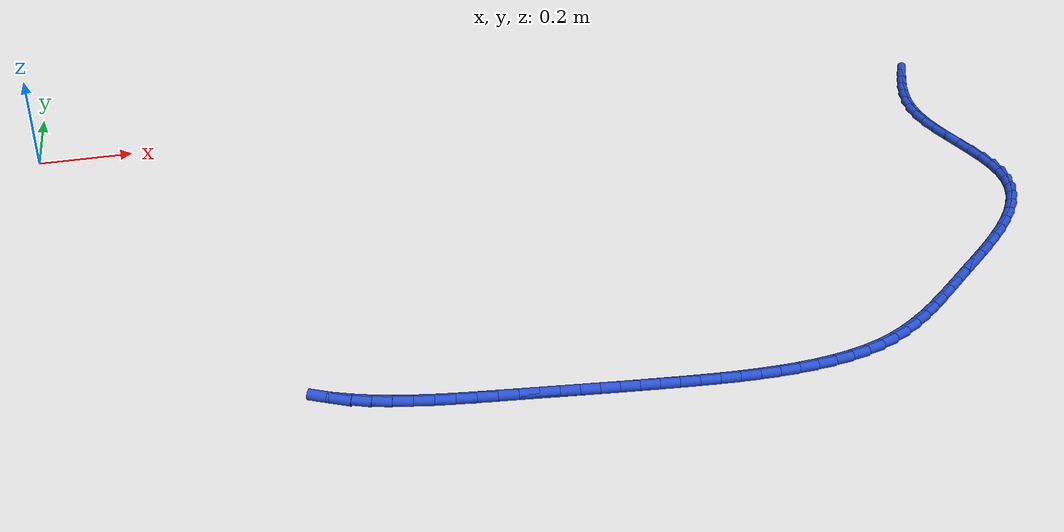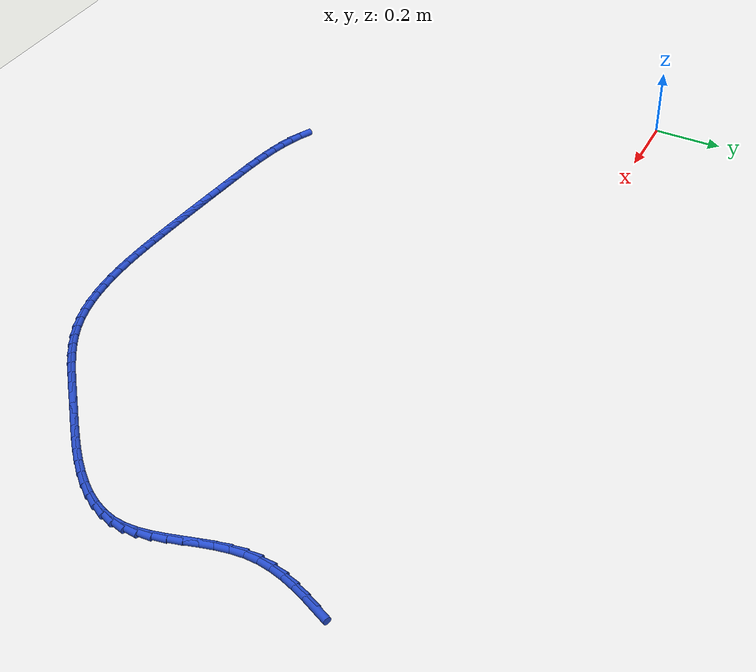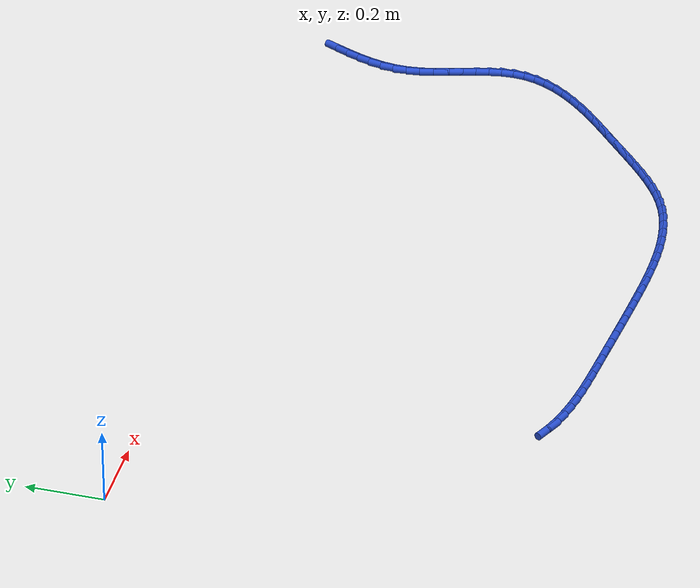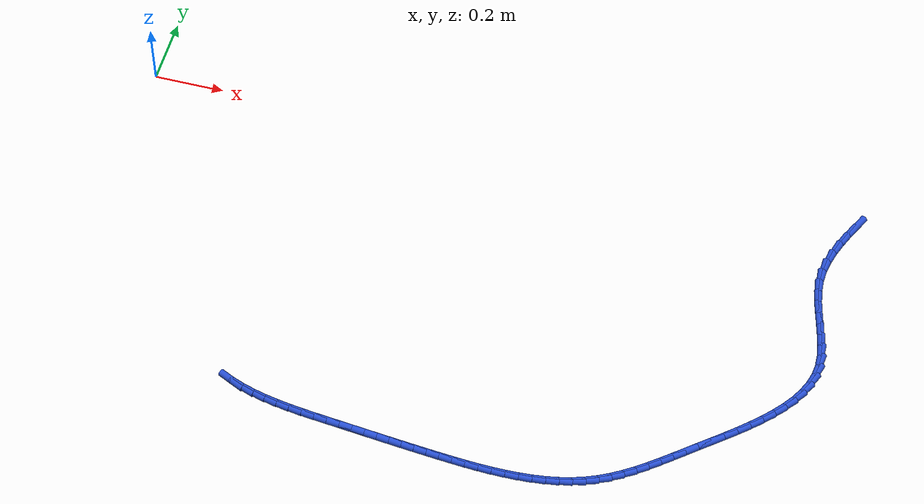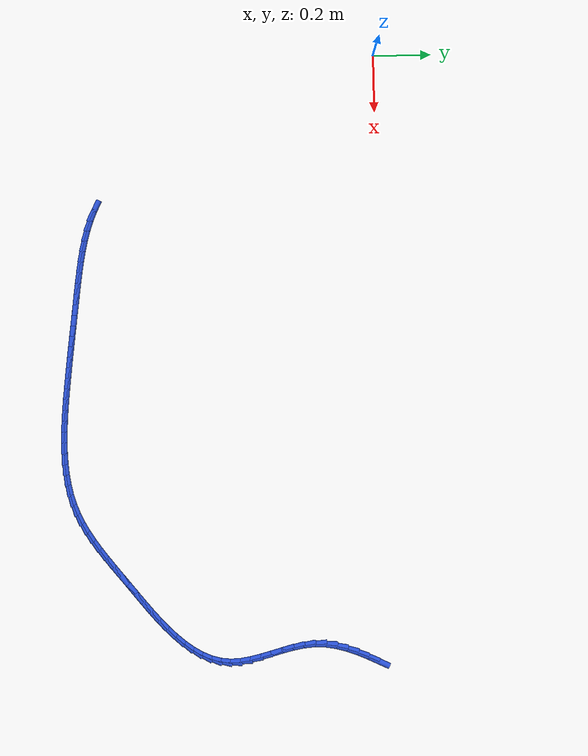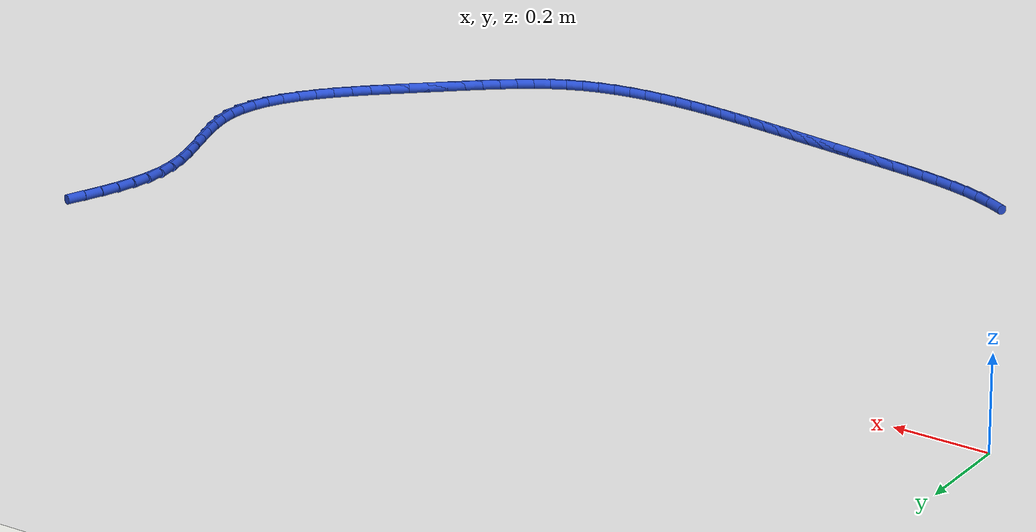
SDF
<sdf version="1.6">
 <world name="default">
  <model name="ground_plane">
   <static>1</static>
   <link name="link">
    <collision name="collision">
     <geometry><plane><normal>0 0 1</normal><size>100 100</size></plane></geometry>
     <surface><friction><ode><mu>100</mu><mu2>50</mu2></ode></friction></surface>
    </collision>
    <visual name="visual">
     <cast_shadows>0</cast_shadows>
     <geometry><plane><normal>0 0 1</normal><size>100 100</size></plane></geometry>
     <material>
      <script><uri>file://media/materials/scripts/gazebo.material</uri><name>Gazebo/WhiteGlow</name></script>
     </material>
    </visual>
   </link>
  </model>
  <model name="line">
   <link name="link_95">
    <pose>2.056342554561105 -0.029011844344870658 0.01 0 1.57 1.1388476114634625</pose>
    <collision name="collision">
     <geometry><cylinder><radius>0.01</radius><length>0.08</length></cylinder></geometry>
    </collision>
    <visual name="visual">
     <material>
      <script><name>Gazebo/Blue</name><uri>file://media/materials/scripts/gazebo.material</uri></script>
     </material>
     <geometry><cylinder><radius>0.01</radius><length>0.08</length></cylinder></geometry>
    </visual>
   </link>
   <link name="link_96">
    <pose>2.0406064838882694 -0.06314784064695883 0.01 0 1.57 1.1770601165541277</pose>
    <collision name="collision">
     <geometry><cylinder><radius>0.01</radius><length>0.08</length></cylinder></geometry>
    </collision>
    <visual name="visual">
     <material>
      <script><name>Gazebo/Blue</name><uri>file://media/materials/scripts/gazebo.material</uri></script>
     </material>
     <geometry><cylinder><radius>0.01</radius><length>0.08</length></cylinder></geometry>
    </visual>
   </link>
   <link name="link_97">
    <pose>2.0263187011598904 -0.09754066671219805 0.01 0 1.57 1.234585510567665</pose>
    <collision name="collision">
     <geometry><cylinder><radius>0.01</radius><length>0.08</length></cylinder></geometry>
    </collision>
    <visual name="visual">
     <material>
      <script><name>Gazebo/Blue</name><uri>file://media/materials/scripts/gazebo.material</uri></script>
     </material>
     <geometry><cylinder><radius>0.01</radius><length>0.08</length></cylinder></geometry>
    </visual>
   </link>
   <link name="link_98">
    <pose>2.014205551460342 -0.13220123672289816 0.01 0 1.57 1.3130005502657833</pose>
    <collision name="collision">
     <geometry><cylinder><radius>0.01</radius><length>0.08</length></cylinder></geometry>
    </collision>
    <visual name="visual">
     <material>
      <script><name>Gazebo/Blue</name><uri>file://media/materials/scripts/gazebo.material</uri></script>
     </material>
     <geometry><cylinder><radius>0.01</radius><length>0.08</length></cylinder></geometry>
    </visual>
   </link>
   <link name="link_99">
    <pose>2.004993379873996 -0.1671404648613711 0.01 0 1.57 1.4135739616942622</pose>
    <collision name="collision">
     <geometry><cylinder><radius>0.01</radius><length>0.08</length></cylinder></geometry>
    </collision>
    <visual name="visual">
     <material>
      <script><name>Gazebo/Blue</name><uri>file://media/materials/scripts/gazebo.material</uri></script>
     </material>
     <geometry><cylinder><radius>0.01</radius><length>0.08</length></cylinder></geometry>
    </visual>
   </link>
   <link name="link_100">
    <pose>1.9994085314852261 -0.2023692653099266 0.01 0 1.57 1.536098833072326</pose>
    <collision name="collision">
     <geometry><cylinder><radius>0.01</radius><length>0.08</length></cylinder></geometry>
    </collision>
    <visual name="visual">
     <material>
      <script><name>Gazebo/Blue</name><uri>file://media/materials/scripts/gazebo.material</uri></script>
     </material>
     <geometry><cylinder><radius>0.01</radius><length>0.08</length></cylinder></geometry>
    </visual>
   </link>
   <link name="link_101">
    <pose>1.9981752655209268 -0.23789837349829085 0.01 0 1.57 -1.4787136516543946</pose>
    <collision name="collision">
     <geometry><cylinder><radius>0.01</radius><length>0.08</length></cylinder></geometry>
    </collision>
    <visual name="visual">
     <material>
      <script><name>Gazebo/Blue</name><uri>file://media/materials/scripts/gazebo.material</uri></script>
     </material>
     <geometry><cylinder><radius>0.01</radius><length>0.08</length></cylinder></geometry>
    </visual>
   </link>
   <link name="link_102">
    <pose>2.00148063086693 -0.2736924873211175 0.01 0 1.57 -1.3841668818279076</pose>
    <collision name="collision">
     <geometry><cylinder><radius>0.01</radius><length>0.08</length></cylinder></geometry>
    </collision>
    <visual name="visual">
     <material>
      <script><name>Gazebo/Blue</name><uri>file://media/materials/scripts/gazebo.material</uri></script>
     </material>
     <geometry><cylinder><radius>0.01</radius><length>0.08</length></cylinder></geometry>
    </visual>
   </link>
   <link name="link_103">
    <pose>2.0082626842800253 -0.30960926928198373 0.01 0 1.57 -1.3245270748039015</pose>
    <collision name="collision">
     <geometry><cylinder><radius>0.01</radius><length>0.08</length></cylinder></geometry>
    </collision>
    <visual name="visual">
     <material>
      <script><name>Gazebo/Blue</name><uri>file://media/materials/scripts/gazebo.material</uri></script>
     </material>
     <geometry><cylinder><radius>0.01</radius><length>0.08</length></cylinder></geometry>
    </visual>
   </link>
   <link name="link_104">
    <pose>2.017282387317068 -0.3454912052844373 0.01 0 1.57 -1.2971321322681388</pose>
    <collision name="collision">
     <geometry><cylinder><radius>0.01</radius><length>0.08</length></cylinder></geometry>
    </collision>
    <visual name="visual">
     <material>
      <script><name>Gazebo/Blue</name><uri>file://media/materials/scripts/gazebo.material</uri></script>
     </material>
     <geometry><cylinder><radius>0.01</radius><length>0.08</length></cylinder></geometry>
    </visual>
   </link>
   <link name="link_105">
    <pose>2.027300701534919 -0.3811807812320253 0.01 0 1.57 -1.300866322305182</pose>
    <collision name="collision">
     <geometry><cylinder><radius>0.01</radius><length>0.08</length></cylinder></geometry>
    </collision>
    <visual name="visual">
     <material>
      <script><name>Gazebo/Blue</name><uri>file://media/materials/scripts/gazebo.material</uri></script>
     </material>
     <geometry><cylinder><radius>0.01</radius><length>0.08</length></cylinder></geometry>
    </visual>
   </link>
   <link name="link_106">
    <pose>2.0370785884904357 -0.4165204830282971 0.01 0 1.57 -1.3369169460558543</pose>
    <collision name="collision">
     <geometry><cylinder><radius>0.01</radius><length>0.08</length></cylinder></geometry>
    </collision>
    <visual name="visual">
     <material>
      <script><name>Gazebo/Blue</name><uri>file://media/materials/scripts/gazebo.material</uri></script>
     </material>
     <geometry><cylinder><radius>0.01</radius><length>0.08</length></cylinder></geometry>
    </visual>
   </link>
   <link name="link_107">
    <pose>2.045377009740477 -0.45135279657679983 0.01 0 1.57 -1.408914302560831</pose>
    <collision name="collision">
     <geometry><cylinder><radius>0.01</radius><length>0.08</length></cylinder></geometry>
    </collision>
    <visual name="visual">
     <material>
      <script><name>Gazebo/Blue</name><uri>file://media/materials/scripts/gazebo.material</uri></script>
     </material>
     <geometry><cylinder><radius>0.01</radius><length>0.08</length></cylinder></geometry>
    </visual>
   </link>
   <link name="link_108">
    <pose>2.0509569268419012 -0.48552020778108124 0.01 0 1.57 -1.5221804503451923</pose>
    <collision name="collision">
     <geometry><cylinder><radius>0.01</radius><length>0.08</length></cylinder></geometry>
    </collision>
    <visual name="visual">
     <material>
      <script><name>Gazebo/Blue</name><uri>file://media/materials/scripts/gazebo.material</uri></script>
     </material>
     <geometry><cylinder><radius>0.01</radius><length>0.08</length></cylinder></geometry>
    </visual>
   </link>
   <link name="link_109">
    <pose>2.052579301351566 -0.5188652025446892 0.01 0 1.57 1.465275019098624</pose>
    <collision name="collision">
     <geometry><cylinder><radius>0.01</radius><length>0.08</length></cylinder></geometry>
    </collision>
    <visual name="visual">
     <material>
      <script><name>Gazebo/Blue</name><uri>file://media/materials/scripts/gazebo.material</uri></script>
     </material>
     <geometry><cylinder><radius>0.01</radius><length>0.08</length></cylinder></geometry>
    </visual>
   </link>
   <link name="link_110">
    <pose>2.0491494840184044 -0.551248025495782 0.01 0 1.57 1.3073940402373214</pose>
    <collision name="collision">
     <geometry><cylinder><radius>0.01</radius><length>0.08</length></cylinder></geometry>
    </collision>
    <visual name="visual">
     <material>
      <script><name>Gazebo/Blue</name><uri>file://media/materials/scripts/gazebo.material</uri></script>
     </material>
     <geometry><cylinder><radius>0.01</radius><length>0.08</length></cylinder></geometry>
    </visual>
   </link>
   <link name="link_111">
    <pose>2.040677394852185 -0.5826647745146531 0.01 0 1.57 1.1681545305176781</pose>
    <collision name="collision">
     <geometry><cylinder><radius>0.01</radius><length>0.08</length></cylinder></geometry>
    </collision>
    <visual name="visual">
     <material>
      <script><name>Gazebo/Blue</name><uri>file://media/materials/scripts/gazebo.material</uri></script>
     </material>
     <geometry><cylinder><radius>0.01</radius><length>0.08</length></cylinder></geometry>
    </visual>
   </link>
   <link name="link_112">
    <pose>2.02768306583894 -0.6131742872059258 0.01 0 1.57 1.0505227884069266</pose>
    <collision name="collision">
     <geometry><cylinder><radius>0.01</radius><length>0.08</length></cylinder></geometry>
    </collision>
    <visual name="visual">
     <material>
      <script><name>Gazebo/Blue</name><uri>file://media/materials/scripts/gazebo.material</uri></script>
     </material>
     <geometry><cylinder><radius>0.01</radius><length>0.08</length></cylinder></geometry>
    </visual>
   </link>
   <link name="link_113">
    <pose>2.0106892756420933 -0.6428357389937442 0.01 0 1.57 0.9540596732785436</pose>
    <collision name="collision">
     <geometry><cylinder><radius>0.01</radius><length>0.08</length></cylinder></geometry>
    </collision>
    <visual name="visual">
     <material>
      <script><name>Gazebo/Blue</name><uri>file://media/materials/scripts/gazebo.material</uri></script>
     </material>
     <geometry><cylinder><radius>0.01</radius><length>0.08</length></cylinder></geometry>
    </visual>
   </link>
   <link name="link_114">
    <pose>1.9902188029250687 -0.67170830530225 0.01 0 1.57 0.8766455825242139</pose>
    <collision name="collision">
     <geometry><cylinder><radius>0.01</radius><length>0.08</length></cylinder></geometry>
    </collision>
    <visual name="visual">
     <material>
      <script><name>Gazebo/Blue</name><uri>file://media/materials/scripts/gazebo.material</uri></script>
     </material>
     <geometry><cylinder><radius>0.01</radius><length>0.08</length></cylinder></geometry>
    </visual>
   </link>
   <link name="link_115">
    <pose>1.9667944263512867 -0.6998511615555852 0.01 0 1.57 0.8157073833428973</pose>
    <collision name="collision">
     <geometry><cylinder><radius>0.01</radius><length>0.08</length></cylinder></geometry>
    </collision>
    <visual name="visual">
     <material>
      <script><name>Gazebo/Blue</name><uri>file://media/materials/scripts/gazebo.material</uri></script>
     </material>
     <geometry><cylinder><radius>0.01</radius><length>0.08</length></cylinder></geometry>
    </visual>
   </link>
   <link name="link_116">
    <pose>1.9409389245841722 -0.7273234831778931 0.01 0 1.57 0.7688708077961881</pose>
    <collision name="collision">
     <geometry><cylinder><radius>0.01</radius><length>0.08</length></cylinder></geometry>
    </collision>
    <visual name="visual">
     <material>
      <script><name>Gazebo/Blue</name><uri>file://media/materials/scripts/gazebo.material</uri></script>
     </material>
     <geometry><cylinder><radius>0.01</radius><length>0.08</length></cylinder></geometry>
    </visual>
   </link>
   <link name="link_117">
    <pose>1.9131750762871484 -0.7541844455933158 0.01 0 1.57 0.7342216475062994</pose>
    <collision name="collision">
     <geometry><cylinder><radius>0.01</radius><length>0.08</length></cylinder></geometry>
    </collision>
    <visual name="visual">
     <material>
      <script><name>Gazebo/Blue</name><uri>file://media/materials/scripts/gazebo.material</uri></script>
     </material>
     <geometry><cylinder><radius>0.01</radius><length>0.08</length></cylinder></geometry>
    </visual>
   </link>
   <link name="link_118">
    <pose>1.8840256601236383 -0.7804932242259954 0.01 0 1.57 0.7103720087939931</pose>
    <collision name="collision">
     <geometry><cylinder><radius>0.01</radius><length>0.08</length></cylinder></geometry>
    </collision>
    <visual name="visual">
     <material>
      <script><name>Gazebo/Blue</name><uri>file://media/materials/scripts/gazebo.material</uri></script>
     </material>
     <geometry><cylinder><radius>0.01</radius><length>0.08</length></cylinder></geometry>
    </visual>
   </link>
   <link name="link_119">
    <pose>1.8540134547570633 -0.8063089945000753 0.01 0 1.57 0.6964551193315719</pose>
    <collision name="collision">
     <geometry><cylinder><radius>0.01</radius><length>0.08</length></cylinder></geometry>
    </collision>
    <visual name="visual">
     <material>
      <script><name>Gazebo/Blue</name><uri>file://media/materials/scripts/gazebo.material</uri></script>
     </material>
     <geometry><cylinder><radius>0.01</radius><length>0.08</length></cylinder></geometry>
    </visual>
   </link>
   <link name="link_120">
    <pose>1.8236612388508489 -0.8316909318396981 0.01 0 1.57 0.6921127248559575</pose>
    <collision name="collision">
     <geometry><cylinder><radius>0.01</radius><length>0.08</length></cylinder></geometry>
    </collision>
    <visual name="visual">
     <material>
      <script><name>Gazebo/Blue</name><uri>file://media/materials/scripts/gazebo.material</uri></script>
     </material>
     <geometry><cylinder><radius>0.01</radius><length>0.08</length></cylinder></geometry>
    </visual>
   </link>
   <link name="link_121">
    <pose>1.7934917910684156 -0.8566982116690054 0.01 0 1.57 0.6955356973890955</pose>
    <collision name="collision">
     <geometry><cylinder><radius>0.01</radius><length>0.08</length></cylinder></geometry>
    </collision>
    <visual name="visual">
     <material>
      <script><name>Gazebo/Blue</name><uri>file://media/materials/scripts/gazebo.material</uri></script>
     </material>
     <geometry><cylinder><radius>0.01</radius><length>0.08</length></cylinder></geometry>
    </visual>
   </link>
   <link name="link_122">
    <pose>1.7639499467029625 -0.8813563583820705 0.01 0 1.57 0.6944872997351925</pose>
    <collision name="collision">
     <geometry><cylinder><radius>0.01</radius><length>0.08</length></cylinder></geometry>
    </collision>
    <visual name="visual">
     <material>
      <script><name>Gazebo/Blue</name><uri>file://media/materials/scripts/gazebo.material</uri></script>
     </material>
     <geometry><cylinder><radius>0.01</radius><length>0.08</length></cylinder></geometry>
    </visual>
   </link>
   <link name="link_123">
    <pose>1.7349885944750623 -0.9054785048782164 0.01 0 1.57 0.6836494618039648</pose>
    <collision name="collision">
     <geometry><cylinder><radius>0.01</radius><length>0.08</length></cylinder></geometry>
    </collision>
    <visual name="visual">
     <material>
      <script><name>Gazebo/Blue</name><uri>file://media/materials/scripts/gazebo.material</uri></script>
     </material>
     <geometry><cylinder><radius>0.01</radius><length>0.08</length></cylinder></geometry>
    </visual>
   </link>
   <link name="link_124">
    <pose>1.7063692175803395 -0.9287951472262452 0.01 0 1.57 0.6623979039565839</pose>
    <collision name="collision">
     <geometry><cylinder><radius>0.01</radius><length>0.08</length></cylinder></geometry>
    </collision>
    <visual name="visual">
     <material>
      <script><name>Gazebo/Blue</name><uri>file://media/materials/scripts/gazebo.material</uri></script>
     </material>
     <geometry><cylinder><radius>0.01</radius><length>0.08</length></cylinder></geometry>
    </visual>
   </link>
   <link name="link_125">
    <pose>1.6778528700487894 -0.9510365962083143 0.01 0 1.57 0.6301316659406218</pose>
    <collision name="collision">
     <geometry><cylinder><radius>0.01</radius><length>0.08</length></cylinder></geometry>
    </collision>
    <visual name="visual">
     <material>
      <script><name>Gazebo/Blue</name><uri>file://media/materials/scripts/gazebo.material</uri></script>
     </material>
     <geometry><cylinder><radius>0.01</radius><length>0.08</length></cylinder></geometry>
    </visual>
   </link>
   <link name="link_126">
    <pose>1.6492006059104052 -0.9719331626065827 0.01 0 1.57 0.5863450060497113</pose>
    <collision name="collision">
     <geometry><cylinder><radius>0.01</radius><length>0.08</length></cylinder></geometry>
    </collision>
    <visual name="visual">
     <material>
      <script><name>Gazebo/Blue</name><uri>file://media/materials/scripts/gazebo.material</uri></script>
     </material>
     <geometry><cylinder><radius>0.01</radius><length>0.08</length></cylinder></geometry>
    </visual>
   </link>
   <link name="link_127">
    <pose>1.6201734791951787 -0.9912151572032061 0.01 0 1.57 0.5307683109633089</pose>
    <collision name="collision">
     <geometry><cylinder><radius>0.01</radius><length>0.08</length></cylinder></geometry>
    </collision>
    <visual name="visual">
     <material>
      <script><name>Gazebo/Blue</name><uri>file://media/materials/scripts/gazebo.material</uri></script>
     </material>
     <geometry><cylinder><radius>0.01</radius><length>0.08</length></cylinder></geometry>
    </visual>
   </link>
   <link name="link_128">
    <pose>1.5905325439331064 -1.0086128907803433 0.01 0 1.57 0.46356728621594867</pose>
    <collision name="collision">
     <geometry><cylinder><radius>0.01</radius><length>0.08</length></cylinder></geometry>
    </collision>
    <visual name="visual">
     <material>
      <script><name>Gazebo/Blue</name><uri>file://media/materials/scripts/gazebo.material</uri></script>
     </material>
     <geometry><cylinder><radius>0.01</radius><length>0.08</length></cylinder></geometry>
    </visual>
   </link>
   <link name="link_129">
    <pose>1.5600388541541808 -1.0238566741201511 0.01 0 1.57 0.38578865350536573</pose>
    <collision name="collision">
     <geometry><cylinder><radius>0.01</radius><length>0.08</length></cylinder></geometry>
    </collision>
    <visual name="visual">
     <material>
      <script><name>Gazebo/Blue</name><uri>file://media/materials/scripts/gazebo.material</uri></script>
     </material>
     <geometry><cylinder><radius>0.01</radius><length>0.08</length></cylinder></geometry>
    </visual>
   </link>
   <link name="link_130">
    <pose>1.5284582813790055 -1.0366828228529485 0.01 0 1.57 0.30620028577889224</pose>
    <collision name="collision">
     <geometry><cylinder><radius>0.01</radius><length>0.08</length></cylinder></geometry>
    </collision>
    <visual name="visual">
     <material>
      <script><name>Gazebo/Blue</name><uri>file://media/materials/scripts/gazebo.material</uri></script>
     </material>
     <geometry><cylinder><radius>0.01</radius><length>0.08</length></cylinder></geometry>
    </visual>
   </link>
   <link name="link_131">
    <pose>1.4957210214610759 -1.0470324776410656 0.01 0 1.57 0.23447679684664027</pose>
    <collision name="collision">
     <geometry><cylinder><radius>0.01</radius><length>0.08</length></cylinder></geometry>
    </collision>
    <visual name="visual">
     <material>
      <script><name>Gazebo/Blue</name><uri>file://media/materials/scripts/gazebo.material</uri></script>
     </material>
     <geometry><cylinder><radius>0.01</radius><length>0.08</length></cylinder></geometry>
    </visual>
   </link>
   <link name="link_132">
    <pose>1.461958328358687 -1.0550973916521509 0.01 0 1.57 0.17112752150392066</pose>
    <collision name="collision">
     <geometry><cylinder><radius>0.01</radius><length>0.08</length></cylinder></geometry>
    </collision>
    <visual name="visual">
     <material>
      <script><name>Gazebo/Blue</name><uri>file://media/materials/scripts/gazebo.material</uri></script>
     </material>
     <geometry><cylinder><radius>0.01</radius><length>0.08</length></cylinder></geometry>
    </visual>
   </link>
   <link name="link_133">
    <pose>1.4273137141448105 -1.0610845974022454 0.01 0 1.57 0.11582126097148114</pose>
    <collision name="collision">
     <geometry><cylinder><radius>0.01</radius><length>0.08</length></cylinder></geometry>
    </collision>
    <visual name="visual">
     <material>
      <script><name>Gazebo/Blue</name><uri>file://media/materials/scripts/gazebo.material</uri></script>
     </material>
     <geometry><cylinder><radius>0.01</radius><length>0.08</length></cylinder></geometry>
    </visual>
   </link>
   <link name="link_134">
    <pose>1.3919306908924192 -1.0652011274073891 0.01 0 1.57 0.06807221872453864</pose>
    <collision name="collision">
     <geometry><cylinder><radius>0.01</radius><length>0.08</length></cylinder></geometry>
    </collision>
    <visual name="visual">
     <material>
      <script><name>Gazebo/Blue</name><uri>file://media/materials/scripts/gazebo.material</uri></script>
     </material>
     <geometry><cylinder><radius>0.01</radius><length>0.08</length></cylinder></geometry>
    </visual>
   </link>
   <link name="link_135">
    <pose>1.3559527706744858 -1.0676540141836224 0.01 0 1.57 0.0273413888095279</pose>
    <collision name="collision">
     <geometry><cylinder><radius>0.01</radius><length>0.08</length></cylinder></geometry>
    </collision>
    <visual name="visual">
     <material>
      <script><name>Gazebo/Blue</name><uri>file://media/materials/scripts/gazebo.material</uri></script>
     </material>
     <geometry><cylinder><radius>0.01</radius><length>0.08</length></cylinder></geometry>
    </visual>
   </link>
   <link name="link_136">
    <pose>1.3195234655639825 -1.0686502902469852 0.01 0 1.57 -0.006894871457046202</pose>
    <collision name="collision">
     <geometry><cylinder><radius>0.01</radius><length>0.08</length></cylinder></geometry>
    </collision>
    <visual name="visual">
     <material>
      <script><name>Gazebo/Blue</name><uri>file://media/materials/scripts/gazebo.material</uri></script>
     </material>
     <geometry><cylinder><radius>0.01</radius><length>0.08</length></cylinder></geometry>
    </visual>
   </link>
   <link name="link_137">
    <pose>1.2827862876338825 -1.0683969881135185 0.01 0 1.57 -0.035101938628415374</pose>
    <collision name="collision">
     <geometry><cylinder><radius>0.01</radius><length>0.08</length></cylinder></geometry>
    </collision>
    <visual name="visual">
     <material>
      <script><name>Gazebo/Blue</name><uri>file://media/materials/scripts/gazebo.material</uri></script>
     </material>
     <geometry><cylinder><radius>0.01</radius><length>0.08</length></cylinder></geometry>
    </visual>
   </link>
   <link name="link_138">
    <pose>1.2458847489571578 -1.067101140299262 0.01 0 1.57 -0.05766144774146982</pose>
    <collision name="collision">
     <geometry><cylinder><radius>0.01</radius><length>0.08</length></cylinder></geometry>
    </collision>
    <visual name="visual">
     <material>
      <script><name>Gazebo/Blue</name><uri>file://media/materials/scripts/gazebo.material</uri></script>
     </material>
     <geometry><cylinder><radius>0.01</radius><length>0.08</length></cylinder></geometry>
    </visual>
   </link>
   <link name="link_139">
    <pose>1.2089623616067822 -1.0649697793202564 0.01 0 1.57 -0.07485612761225317</pose>
    <collision name="collision">
     <geometry><cylinder><radius>0.01</radius><length>0.08</length></cylinder></geometry>
    </collision>
    <visual name="visual">
     <material>
      <script><name>Gazebo/Blue</name><uri>file://media/materials/scripts/gazebo.material</uri></script>
     </material>
     <geometry><cylinder><radius>0.01</radius><length>0.08</length></cylinder></geometry>
    </visual>
   </link>
   <link name="link_140">
    <pose>1.1721626376557266 -1.0622099376925418 0.01 0 1.57 -0.08685948607524255</pose>
    <collision name="collision">
     <geometry><cylinder><radius>0.01</radius><length>0.08</length></cylinder></geometry>
    </collision>
    <visual name="visual">
     <material>
      <script><name>Gazebo/Blue</name><uri>file://media/materials/scripts/gazebo.material</uri></script>
     </material>
     <geometry><cylinder><radius>0.01</radius><length>0.08</length></cylinder></geometry>
    </visual>
   </link>
   <link name="link_141">
    <pose>1.135629089176964 -1.0590286479321585 0.01 0 1.57 -0.09387097424161812</pose>
    <collision name="collision">
     <geometry><cylinder><radius>0.01</radius><length>0.08</length></cylinder></geometry>
    </collision>
    <visual name="visual">
     <material>
      <script><name>Gazebo/Blue</name><uri>file://media/materials/scripts/gazebo.material</uri></script>
     </material>
     <geometry><cylinder><radius>0.01</radius><length>0.08</length></cylinder></geometry>
    </visual>
   </link>
   <link name="link_142">
    <pose>1.0994972871013176 -1.0556269228675708 0.01 0 1.57 -0.09825745006333117</pose>
    <collision name="collision">
     <geometry><cylinder><radius>0.01</radius><length>0.08</length></cylinder></geometry>
    </collision>
    <visual name="visual">
     <material>
      <script><name>Gazebo/Blue</name><uri>file://media/materials/scripts/gazebo.material</uri></script>
     </material>
     <geometry><cylinder><radius>0.01</radius><length>0.08</length></cylinder></geometry>
    </visual>
   </link>
   <link name="link_143">
    <pose>1.06377000535823 -1.0521051101528622 0.01 0 1.57 -0.1019557372456092</pose>
    <collision name="collision">
     <geometry><cylinder><radius>0.01</radius><length>0.08</length></cylinder></geometry>
    </collision>
    <visual name="visual">
     <material>
      <script><name>Gazebo/Blue</name><uri>file://media/materials/scripts/gazebo.material</uri></script>
     </material>
     <geometry><cylinder><radius>0.01</radius><length>0.08</length></cylinder></geometry>
    </visual>
   </link>
   <link name="link_144">
    <pose>1.0283401361892652 -1.0484802629463286 0.01 0 1.57 -0.10497681861020626</pose>
    <collision name="collision">
     <geometry><cylinder><radius>0.01</radius><length>0.08</length></cylinder></geometry>
    </collision>
    <visual name="visual">
     <material>
      <script><name>Gazebo/Blue</name><uri>file://media/materials/scripts/gazebo.material</uri></script>
     </material>
     <geometry><cylinder><radius>0.01</radius><length>0.08</length></cylinder></geometry>
    </visual>
   </link>
   <link name="link_145">
    <pose>0.9930972653649988 -1.044766927975586 0.01 0 1.57 -0.1072827190909833</pose>
    <collision name="collision">
     <geometry><cylinder><radius>0.01</radius><length>0.08</length></cylinder></geometry>
    </collision>
    <visual name="visual">
     <material>
      <script><name>Gazebo/Blue</name><uri>file://media/materials/scripts/gazebo.material</uri></script>
     </material>
     <geometry><cylinder><radius>0.01</radius><length>0.08</length></cylinder></geometry>
    </visual>
   </link>
   <link name="link_146">
    <pose>0.9579309786560036 -1.04097965196825 0.01 0 1.57 -0.10884812257698155</pose>
    <collision name="collision">
     <geometry><cylinder><radius>0.01</radius><length>0.08</length></cylinder></geometry>
    </collision>
    <visual name="visual">
     <material>
      <script><name>Gazebo/Blue</name><uri>file://media/materials/scripts/gazebo.material</uri></script>
     </material>
     <geometry><cylinder><radius>0.01</radius><length>0.08</length></cylinder></geometry>
    </visual>
   </link>
   <link name="link_147">
    <pose>0.9227308618328552 -1.0371329816519352 0.01 0 1.57 -0.10966122994353081</pose>
    <collision name="collision">
     <geometry><cylinder><radius>0.01</radius><length>0.08</length></cylinder></geometry>
    </collision>
    <visual name="visual">
     <material>
      <script><name>Gazebo/Blue</name><uri>file://media/materials/scripts/gazebo.material</uri></script>
     </material>
     <geometry><cylinder><radius>0.01</radius><length>0.08</length></cylinder></geometry>
    </visual>
   </link>
   <link name="link_148">
    <pose>0.887386500666128 -1.0332414637542575 0.01 0 1.57 -0.10972401500457414</pose>
    <collision name="collision">
     <geometry><cylinder><radius>0.01</radius><length>0.08</length></cylinder></geometry>
    </collision>
    <visual name="visual">
     <material>
      <script><name>Gazebo/Blue</name><uri>file://media/materials/scripts/gazebo.material</uri></script>
     </material>
     <geometry><cylinder><radius>0.01</radius><length>0.08</length></cylinder></geometry>
    </visual>
   </link>
   <link name="link_149">
    <pose>0.8517874809263966 -1.0293196450028315 0.01 0 1.57 -0.10917008518420383</pose>
    <collision name="collision">
     <geometry><cylinder><radius>0.01</radius><length>0.08</length></cylinder></geometry>
    </collision>
    <visual name="visual">
     <material>
      <script><name>Gazebo/Blue</name><uri>file://media/materials/scripts/gazebo.material</uri></script>
     </material>
     <geometry><cylinder><radius>0.01</radius><length>0.08</length></cylinder></geometry>
    </visual>
   </link>
   <link name="link_150">
    <pose>0.8158277107791814 -1.0253782433614365 0.01 0 1.57 -0.1118386611058433</pose>
    <collision name="collision">
     <geometry><cylinder><radius>0.01</radius><length>0.08</length></cylinder></geometry>
    </collision>
    <visual name="visual">
     <material>
      <script><name>Gazebo/Blue</name><uri>file://media/materials/scripts/gazebo.material</uri></script>
     </material>
     <geometry><cylinder><radius>0.01</radius><length>0.08</length></cylinder></geometry>
    </visual>
   </link>
   <link name="link_151">
    <pose>0.7795420733683588 -1.0213031016018013 0.01 0 1.57 -0.12223526035133617</pose>
    <collision name="collision">
     <geometry><cylinder><radius>0.01</radius><length>0.08</length></cylinder></geometry>
    </collision>
    <visual name="visual">
     <material>
      <script><name>Gazebo/Blue</name><uri>file://media/materials/scripts/gazebo.material</uri></script>
     </material>
     <geometry><cylinder><radius>0.01</radius><length>0.08</length></cylinder></geometry>
    </visual>
   </link>
   <link name="link_152">
    <pose>0.7431343073180483 -1.0168304908427988 0.01 0 1.57 -0.14067167263054242</pose>
    <collision name="collision">
     <geometry><cylinder><radius>0.01</radius><length>0.08</length></cylinder></geometry>
    </collision>
    <visual name="visual">
     <material>
      <script><name>Gazebo/Blue</name><uri>file://media/materials/scripts/gazebo.material</uri></script>
     </material>
     <geometry><cylinder><radius>0.01</radius><length>0.08</length></cylinder></geometry>
    </visual>
   </link>
   <link name="link_153">
    <pose>0.7068181067344184 -1.011687863668641 0.01 0 1.57 -0.16740031950205958</pose>
    <collision name="collision">
     <geometry><cylinder><radius>0.01</radius><length>0.08</length></cylinder></geometry>
    </collision>
    <visual name="visual">
     <material>
      <script><name>Gazebo/Blue</name><uri>file://media/materials/scripts/gazebo.material</uri></script>
     </material>
     <geometry><cylinder><radius>0.01</radius><length>0.08</length></cylinder></geometry>
    </visual>
   </link>
   <link name="link_154">
    <pose>0.6708071657236394 -1.005602672663539 0.01 0 1.57 -0.20285947290344894</pose>
    <collision name="collision">
     <geometry><cylinder><radius>0.01</radius><length>0.08</length></cylinder></geometry>
    </collision>
    <visual name="visual">
     <material>
      <script><name>Gazebo/Blue</name><uri>file://media/materials/scripts/gazebo.material</uri></script>
     </material>
     <geometry><cylinder><radius>0.01</radius><length>0.08</length></cylinder></geometry>
    </visual>
   </link>
   <link name="link_155">
    <pose>0.6353151783918819 -0.9983023704117056 0.01 0 1.57 -0.24763384554659199</pose>
    <collision name="collision">
     <geometry><cylinder><radius>0.01</radius><length>0.08</length></cylinder></geometry>
    </collision>
    <visual name="visual">
     <material>
      <script><name>Gazebo/Blue</name><uri>file://media/materials/scripts/gazebo.material</uri></script>
     </material>
     <geometry><cylinder><radius>0.01</radius><length>0.08</length></cylinder></geometry>
    </visual>
   </link>
   <link name="link_156">
    <pose>0.6005558388453147 -0.989514409497351 0.01 0 1.57 -0.30238917664375126</pose>
    <collision name="collision">
     <geometry><cylinder><radius>0.01</radius><length>0.08</length></cylinder></geometry>
    </collision>
    <visual name="visual">
     <material>
      <script><name>Gazebo/Blue</name><uri>file://media/materials/scripts/gazebo.material</uri></script>
     </material>
     <geometry><cylinder><radius>0.01</radius><length>0.08</length></cylinder></geometry>
    </visual>
   </link>
   <link name="link_157">
    <pose>0.5667428411901083 -0.9789662425046879 0.01 0 1.57 -0.3677630050722383</pose>
    <collision name="collision">
     <geometry><cylinder><radius>0.01</radius><length>0.08</length></cylinder></geometry>
    </collision>
    <visual name="visual">
     <material>
      <script><name>Gazebo/Blue</name><uri>file://media/materials/scripts/gazebo.material</uri></script>
     </material>
     <geometry><cylinder><radius>0.01</radius><length>0.08</length></cylinder></geometry>
    </visual>
   </link>
   <link name="link_158">
    <pose>0.5340898795324323 -0.9663853220179278 0.01 0 1.57 -0.4441937409577358</pose>
    <collision name="collision">
     <geometry><cylinder><radius>0.01</radius><length>0.08</length></cylinder></geometry>
    </collision>
    <visual name="visual">
     <material>
      <script><name>Gazebo/Blue</name><uri>file://media/materials/scripts/gazebo.material</uri></script>
     </material>
     <geometry><cylinder><radius>0.01</radius><length>0.08</length></cylinder></geometry>
    </visual>
   </link>
  </model>
 </world>
</sdf>
